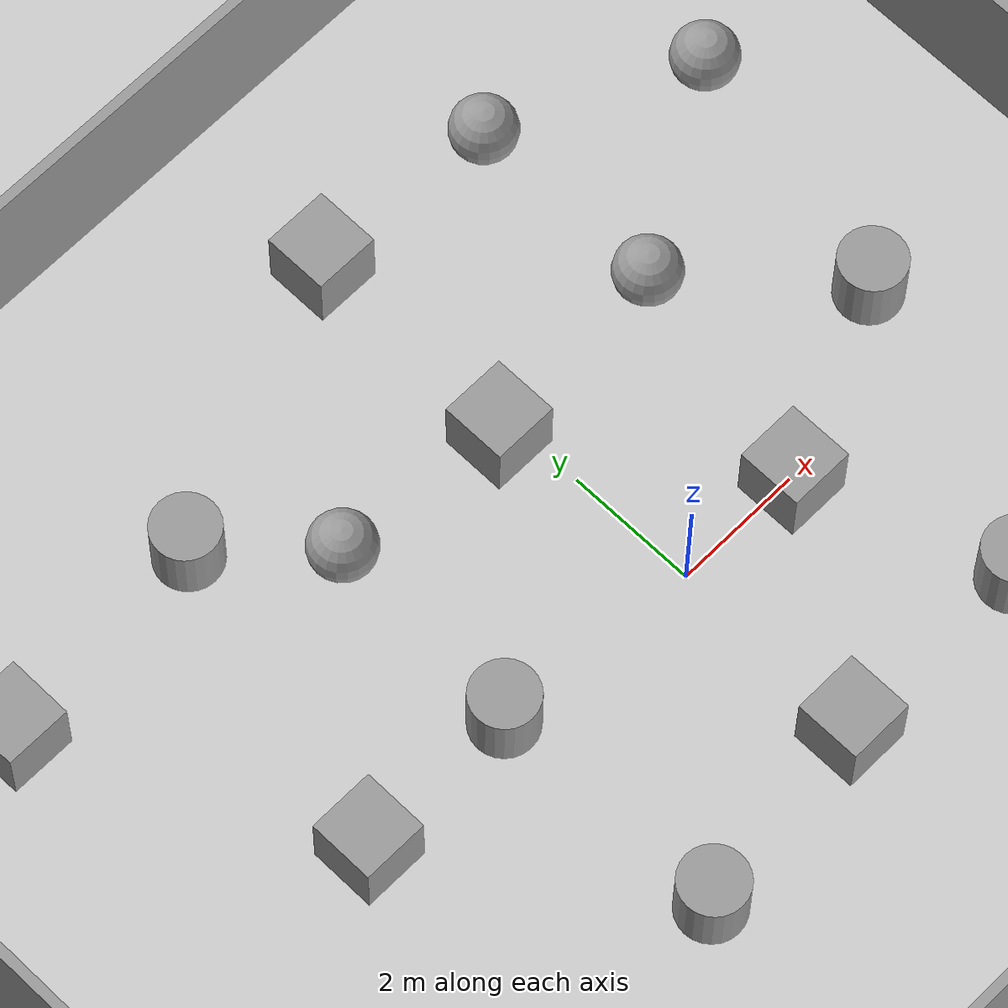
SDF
<sdf version="1.7">
 <world name="default">
  <light name="sun" type="directional">
   <pose>0 0 10 0 -0 0</pose>
   <diffuse>0.8 0.8 0.8 1</diffuse>
   <specular>0.2 0.2 0.2 1</specular>
   <attenuation>
    <range>1000</range>
    <constant>0.9</constant>
    <linear>0.01</linear>
    <quadratic>0.001</quadratic>
   </attenuation>
   <direction>-0.5 0.1 -0.9</direction>
   <spot><inner_angle>0</inner_angle><outer_angle>0</outer_angle><falloff>0</falloff></spot>
  </light>
  <model name="ground_plane">
   <static>1</static>
   <link name="link">
    <collision name="collision">
     <geometry><plane><normal>0 0 1</normal><size>100 100</size></plane></geometry>
     <surface><friction><ode><mu>100</mu><mu2>50</mu2></ode></friction></surface>
    </collision>
    <visual name="visual">
     <cast_shadows>0</cast_shadows>
     <geometry><plane><normal>0 0 1</normal><size>100 100</size></plane></geometry>
     <material>
      <script><uri>file://media/materials/scripts/gazebo.material</uri><name>Gazebo/Grey</name></script>
     </material>
    </visual>
   </link>
  </model>
  <gravity>0 0 -9.8</gravity>
  <magnetic_field>6e-06 2.3e-05 -4.2e-05</magnetic_field>
  <atmosphere type="adiabatic"/>
  <physics type="ode">
   <max_step_size>0.001</max_step_size>
   <real_time_factor>1</real_time_factor>
   <real_time_update_rate>1000</real_time_update_rate>
  </physics>
  <scene><ambient>0.4 0.4 0.4 1</ambient><background>0.7 0.7 0.7 1</background><shadows>1</shadows></scene>
  <spherical_coordinates>
   <surface_model>EARTH_WGS84</surface_model>
   <latitude_deg>0</latitude_deg>
   <longitude_deg>0</longitude_deg>
   <elevation>0</elevation>
   <heading_deg>0</heading_deg>
  </spherical_coordinates>
  <model name="unit_box">
   <pose>1.93964 -0.08049 0.499995 -1e-05 -0 -0</pose>
   <link name="link">
    <inertial>
     <mass>1</mass>
     <inertia>
      <ixx>0.166667</ixx>
      <ixy>0</ixy>
      <ixz>0</ixz>
      <iyy>0.166667</iyy>
      <iyz>0</iyz>
      <izz>0.166667</izz>
     </inertia>
    </inertial>
    <collision name="collision"><geometry><box><size>1 1 1</size></box></geometry></collision>
    <visual name="visual">
     <geometry><box><size>1 1 1</size></box></geometry>
     <material>
      <script><name>Gazebo/Grey</name><uri>file://media/materials/scripts/gazebo.material</uri></script>
     </material>
    </visual>
   </link>
  </model>
  <model name="unit_box_0">
   <pose>-0.138919 -3.06362 0.499995 0 1e-05 0</pose>
   <link name="link">
    <inertial>
     <mass>1</mass>
     <inertia>
      <ixx>0.166667</ixx>
      <ixy>0</ixy>
      <ixz>0</ixz>
      <iyy>0.166667</iyy>
      <iyz>0</iyz>
      <izz>0.166667</izz>
     </inertia>
    </inertial>
    <collision name="collision"><geometry><box><size>1 1 1</size></box></geometry></collision>
    <visual name="visual">
     <geometry><box><size>1 1 1</size></box></geometry>
     <material>
      <script><name>Gazebo/Grey</name><uri>file://media/materials/scripts/gazebo.material</uri></script>
     </material>
    </visual>
   </link>
  </model>
  <model name="unit_box_1">
   <pose>-0.318325 3.14913 0.499995 -1e-05 -0 -0</pose>
   <link name="link">
    <inertial>
     <mass>1</mass>
     <inertia>
      <ixx>0.166667</ixx>
      <ixy>0</ixy>
      <ixz>0</ixz>
      <iyy>0.166667</iyy>
      <iyz>0</iyz>
      <izz>0.166667</izz>
     </inertia>
    </inertial>
    <collision name="collision"><geometry><box><size>1 1 1</size></box></geometry></collision>
    <visual name="visual">
     <geometry><box><size>1 1 1</size></box></geometry>
     <material>
      <script><name>Gazebo/Grey</name><uri>file://media/materials/scripts/gazebo.material</uri></script>
     </material>
    </visual>
   </link>
  </model>
  <model name="unit_cylinder">
   <pose>-3.16913 0.251512 0.499993 -3e-06 3e-06 0</pose>
   <link name="link">
    <inertial>
     <mass>1</mass>
     <inertia><ixx>0.145833</ixx><ixy>0</ixy><ixz>0</ixz><iyy>0.145833</iyy><iyz>0</iyz><izz>0.125</izz></inertia>
    </inertial>
    <collision name="collision">
     <geometry><cylinder><radius>0.5</radius><length>1</length></cylinder></geometry>
    </collision>
    <visual name="visual">
     <geometry><cylinder><radius>0.5</radius><length>1</length></cylinder></geometry>
     <material>
      <script><name>Gazebo/Grey</name><uri>file://media/materials/scripts/gazebo.material</uri></script>
     </material>
    </visual>
   </link>
  </model>
  <model name="unit_sphere">
   <pose>2.74146 3.34619 0.5 0 -0 0</pose>
   <link name="link">
    <inertial>
     <mass>1</mass>
     <inertia><ixx>0.1</ixx><ixy>0</ixy><ixz>0</ixz><iyy>0.1</iyy><iyz>0</iyz><izz>0.1</izz></inertia>
    </inertial>
    <collision name="collision"><geometry><sphere><radius>0.5</radius></sphere></geometry></collision>
    <visual name="visual">
     <geometry><sphere><radius>0.5</radius></sphere></geometry>
     <material>
      <script><name>Gazebo/Grey</name><uri>file://media/materials/scripts/gazebo.material</uri></script>
     </material>
    </visual>
   </link>
  </model>
  <model name="unit_cylinder_0">
   <pose>2.99686 -3.07641 0.499992 -3e-06 3e-06 0</pose>
   <link name="link">
    <inertial>
     <mass>1</mass>
     <inertia><ixx>0.145833</ixx><ixy>0</ixy><ixz>0</ixz><iyy>0.145833</iyy><iyz>0</iyz><izz>0.125</izz></inertia>
    </inertial>
    <collision name="collision">
     <geometry><cylinder><radius>0.5</radius><length>1</length></cylinder></geometry>
    </collision>
    <visual name="visual">
     <geometry><cylinder><radius>0.5</radius><length>1</length></cylinder></geometry>
     <material>
      <script><name>Gazebo/Grey</name><uri>file://media/materials/scripts/gazebo.material</uri></script>
     </material>
    </visual>
   </link>
  </model>
  <model name="unit_box_2">
   <pose>-0.20463 6.60844 0.499995 -1e-05 -0 -0</pose>
   <link name="link">
    <inertial>
     <mass>1</mass>
     <inertia>
      <ixx>0.166667</ixx>
      <ixy>0</ixy>
      <ixz>0</ixz>
      <iyy>0.166667</iyy>
      <iyz>0</iyz>
      <izz>0.166667</izz>
     </inertia>
    </inertial>
    <collision name="collision"><geometry><box><size>1 1 1</size></box></geometry></collision>
    <visual name="visual">
     <geometry><box><size>1 1 1</size></box></geometry>
     <material>
      <script><name>Gazebo/Grey</name><uri>file://media/materials/scripts/gazebo.material</uri></script>
     </material>
    </visual>
   </link>
  </model>
  <model name="unit_cylinder_1">
   <pose>4.79075 1.15452 0.499998 3e-06 -3e-06 0</pose>
   <link name="link">
    <inertial>
     <mass>1</mass>
     <inertia><ixx>0.145833</ixx><ixy>0</ixy><ixz>0</ixz><iyy>0.145833</iyy><iyz>0</iyz><izz>0.125</izz></inertia>
    </inertial>
    <collision name="collision">
     <geometry><cylinder><radius>0.5</radius><length>1</length></cylinder></geometry>
    </collision>
    <visual name="visual">
     <geometry><cylinder><radius>0.5</radius><length>1</length></cylinder></geometry>
     <material>
      <script><name>Gazebo/Grey</name><uri>file://media/materials/scripts/gazebo.material</uri></script>
     </material>
    </visual>
   </link>
  </model>
  <model name="unit_sphere_0">
   <pose>2.73147 6.4383 0.5 0 -0 0</pose>
   <link name="link">
    <inertial>
     <mass>1</mass>
     <inertia><ixx>0.1</ixx><ixy>0</ixy><ixz>0</ixz><iyy>0.1</iyy><iyz>0</iyz><izz>0.1</izz></inertia>
    </inertial>
    <collision name="collision"><geometry><sphere><radius>0.5</radius></sphere></geometry></collision>
    <visual name="visual">
     <geometry><sphere><radius>0.5</radius></sphere></geometry>
     <material>
      <script><name>Gazebo/Grey</name><uri>file://media/materials/scripts/gazebo.material</uri></script>
     </material>
    </visual>
   </link>
  </model>
  <model name="unit_cylinder_2">
   <pose>6.33812 -2.40268 0.499998 3e-06 -4e-06 0</pose>
   <link name="link">
    <inertial>
     <mass>1</mass>
     <inertia><ixx>0.145833</ixx><ixy>0</ixy><ixz>0</ixz><iyy>0.145833</iyy><iyz>0</iyz><izz>0.125</izz></inertia>
    </inertial>
    <collision name="collision">
     <geometry><cylinder><radius>0.5</radius><length>1</length></cylinder></geometry>
    </collision>
    <visual name="visual">
     <geometry><cylinder><radius>0.5</radius><length>1</length></cylinder></geometry>
     <material>
      <script><name>Gazebo/Grey</name><uri>file://media/materials/scripts/gazebo.material</uri></script>
     </material>
    </visual>
   </link>
  </model>
  <model name="unit_box_3">
   <pose>1.65578 -5.64349 0.499995 -1e-05 -0 -0</pose>
   <link name="link">
    <inertial>
     <mass>1</mass>
     <inertia>
      <ixx>0.166667</ixx>
      <ixy>0</ixy>
      <ixz>0</ixz>
      <iyy>0.166667</iyy>
      <iyz>0</iyz>
      <izz>0.166667</izz>
     </inertia>
    </inertial>
    <collision name="collision"><geometry><box><size>1 1 1</size></box></geometry></collision>
    <visual name="visual">
     <geometry><box><size>1 1 1</size></box></geometry>
     <material>
      <script><name>Gazebo/Grey</name><uri>file://media/materials/scripts/gazebo.material</uri></script>
     </material>
    </visual>
   </link>
  </model>
  <model name="unit_cylinder_3">
   <pose>-3.12794 -3.42714 0.499992 -3e-06 4e-06 0</pose>
   <link name="link">
    <inertial>
     <mass>1</mass>
     <inertia><ixx>0.145833</ixx><ixy>0</ixy><ixz>0</ixz><iyy>0.145833</iyy><iyz>0</iyz><izz>0.125</izz></inertia>
    </inertial>
    <collision name="collision">
     <geometry><cylinder><radius>0.5</radius><length>1</length></cylinder></geometry>
    </collision>
    <visual name="visual">
     <geometry><cylinder><radius>0.5</radius><length>1</length></cylinder></geometry>
     <material>
      <script><name>Gazebo/Grey</name><uri>file://media/materials/scripts/gazebo.material</uri></script>
     </material>
    </visual>
   </link>
  </model>
  <model name="unit_sphere_1">
   <pose>-3.01074 3.38695 0.5 0 -0 0</pose>
   <link name="link">
    <inertial>
     <mass>1</mass>
     <inertia><ixx>0.1</ixx><ixy>0</ixy><ixz>0</ixz><iyy>0.1</iyy><iyz>0</iyz><izz>0.1</izz></inertia>
    </inertial>
    <collision name="collision"><geometry><sphere><radius>0.5</radius></sphere></geometry></collision>
    <visual name="visual">
     <geometry><sphere><radius>0.5</radius></sphere></geometry>
     <material>
      <script><name>Gazebo/Grey</name><uri>file://media/materials/scripts/gazebo.material</uri></script>
     </material>
    </visual>
   </link>
  </model>
  <model name="unit_box_4">
   <pose>-5.68748 0.212939 0.499995 0 1e-05 0</pose>
   <link name="link">
    <inertial>
     <mass>1</mass>
     <inertia>
      <ixx>0.166667</ixx>
      <ixy>0</ixy>
      <ixz>0</ixz>
      <iyy>0.166667</iyy>
      <iyz>0</iyz>
      <izz>0.166667</izz>
     </inertia>
    </inertial>
    <collision name="collision"><geometry><box><size>1 1 1</size></box></geometry></collision>
    <visual name="visual">
     <geometry><box><size>1 1 1</size></box></geometry>
     <material>
      <script><name>Gazebo/Grey</name><uri>file://media/materials/scripts/gazebo.material</uri></script>
     </material>
    </visual>
   </link>
  </model>
  <model name="unit_cylinder_4">
   <pose>-4.41205 4.87625 0.499992 -3e-06 -4e-06 -0</pose>
   <link name="link">
    <inertial>
     <mass>1</mass>
     <inertia><ixx>0.145833</ixx><ixy>0</ixy><ixz>0</ixz><iyy>0.145833</iyy><iyz>0</iyz><izz>0.125</izz></inertia>
    </inertial>
    <collision name="collision">
     <geometry><cylinder><radius>0.5</radius><length>1</length></cylinder></geometry>
    </collision>
    <visual name="visual">
     <geometry><cylinder><radius>0.5</radius><length>1</length></cylinder></geometry>
     <material>
      <script><name>Gazebo/Grey</name><uri>file://media/materials/scripts/gazebo.material</uri></script>
     </material>
    </visual>
   </link>
  </model>
  <model name="Untitled">
   <pose>-6424.46 -1802.84 0 0 -0 0</pose>
   <link name="Wall_0">
    <collision name="Wall_0_Collision">
     <geometry><box><size>2656.25 0.15 2.5</size></box></geometry>
     <pose>0 0 1.25 0 -0 0</pose>
    </collision>
    <visual name="Wall_0_Visual">
     <pose>0 0 1.25 0 -0 0</pose>
     <geometry><box><size>2656.25 0.15 2.5</size></box></geometry>
     <material>
      <script><uri>file://media/materials/scripts/gazebo.material</uri><name>Gazebo/Grey</name></script>
      <ambient>1 1 1 1</ambient>
     </material>
     <meta><layer>0</layer></meta>
    </visual>
    <pose>-4436.67 -1825.49 0 0 -0 1.309</pose>
   </link>
   <link name="Wall_1">
    <collision name="Wall_1_Collision">
     <geometry><box><size>3297.25 0.15 2.5</size></box></geometry>
     <pose>0 0 1.25 0 -0 0</pose>
    </collision>
    <visual name="Wall_1_Visual">
     <pose>0 0 1.25 0 -0 0</pose>
     <geometry><box><size>3297.25 0.15 2.5</size></box></geometry>
     <material>
      <script><uri>file://media/materials/scripts/gazebo.material</uri><name>Gazebo/Grey</name></script>
      <ambient>1 1 1 1</ambient>
     </material>
     <meta><layer>0</layer></meta>
    </visual>
    <pose>-5258.65 623.006 0 0 -0 2.35619</pose>
   </link>
   <link name="Wall_2">
    <collision name="Wall_2_Collision">
     <geometry><box><size>6061.5 0.15 2.5</size></box></geometry>
     <pose>0 0 1.25 0 -0 0</pose>
    </collision>
    <visual name="Wall_2_Visual">
     <pose>0 0 1.25 0 -0 0</pose>
     <geometry><box><size>6061.5 0.15 2.5</size></box></geometry>
     <material>
      <script><uri>file://media/materials/scripts/gazebo.material</uri><name>Gazebo/Grey</name></script>
      <ambient>1 1 1 1</ambient>
     </material>
     <meta><layer>0</layer></meta>
    </visual>
    <pose>-3496.94 2573.1 0 0 -0 0.261799</pose>
   </link>
   <link name="Wall_4">
    <collision name="Wall_4_Collision">
     <geometry><box><size>8350 0.15 2.5</size></box></geometry>
     <pose>0 0 1.25 0 -0 0</pose>
    </collision>
    <visual name="Wall_4_Visual">
     <pose>0 0 1.25 0 -0 0</pose>
     <geometry><box><size>8350 0.15 2.5</size></box></geometry>
     <material>
      <script><uri>file://media/materials/scripts/gazebo.material</uri><name>Gazebo/Grey</name></script>
      <ambient>1 1 1 1</ambient>
     </material>
     <meta><layer>0</layer></meta>
    </visual>
    <pose>-3447.72 0.008179 0 0 -0 -1.5708</pose>
   </link>
   <link name="Wall_5">
    <collision name="Wall_5_Collision">
     <geometry><box><size>4695.75 0.15 2.5</size></box></geometry>
     <pose>0 0 1.25 0 -0 0</pose>
    </collision>
    <visual name="Wall_5_Visual">
     <pose>0 0 1.25 0 -0 0</pose>
     <geometry><box><size>4695.75 0.15 2.5</size></box></geometry>
     <material>
      <script><uri>file://media/materials/scripts/gazebo.material</uri><name>Gazebo/Grey</name></script>
      <ambient>1 1 1 1</ambient>
     </material>
     <meta><layer>0</layer></meta>
    </visual>
    <pose>-4055.38 -1907.12 0 0 -0 1.8326</pose>
   </link>
   <link name="Wall_6">
    <collision name="Wall_6_Collision">
     <geometry><box><size>212.75 0.15 2.5</size></box></geometry>
     <pose>0 0 1.25 0 -0 0</pose>
    </collision>
    <visual name="Wall_6_Visual">
     <pose>0 0 1.25 0 -0 0</pose>
     <geometry><box><size>212.75 0.15 2.5</size></box></geometry>
     <material>
      <script><uri>file://media/materials/scripts/gazebo.material</uri><name>Gazebo/Grey</name></script>
      <ambient>1 1 1 1</ambient>
     </material>
     <meta><layer>0</layer></meta>
    </visual>
    <pose>-4609.88 452.743 0 0 -0 1.0472</pose>
   </link>
   <link name="Window_0">
    <collision name="Window_0_Collision">
     <geometry><box><size>0.8 0.17 0.8</size></box></geometry>
     <pose>0 0 0.4 0 -0 0</pose>
    </collision>
    <visual name="Window_0_Visual">
     <pose>0 0 0.4 0 -0 0</pose>
     <geometry><box><size>0.8 0.17 0.8</size></box></geometry>
     <material>
      <script><uri>file://media/materials/scripts/gazebo.material</uri><name>Gazebo/Grey</name></script>
     </material>
    </visual>
    <pose>-3633.68 -1961.57 0.5 0 -0 0</pose>
   </link>
   <static>1</static>
  </model>
  <model name="test_room">
   <pose>-1.10733 1.10615 0 0 -0 0</pose>
   <link name="Wall_13">
    <collision name="Wall_13_Collision">
     <geometry><box><size>18.75 0.15 2.5</size></box></geometry>
     <pose>0 0 1.25 0 -0 0</pose>
    </collision>
    <visual name="Wall_13_Visual">
     <pose>0 0 1.25 0 -0 0</pose>
     <geometry><box><size>18.75 0.15 2.5</size></box></geometry>
     <material>
      <script><uri>file://media/materials/scripts/gazebo.material</uri><name>Gazebo/Grey</name></script>
      <ambient>1 1 1 1</ambient>
     </material>
     <meta><layer>0</layer></meta>
    </visual>
    <pose>0 -8.3 0 0 -0 0</pose>
   </link>
   <link name="Wall_14">
    <collision name="Wall_14_Collision">
     <geometry><box><size>16.75 0.15 2.5</size></box></geometry>
     <pose>0 0 1.25 0 -0 0</pose>
    </collision>
    <visual name="Wall_14_Visual">
     <pose>0 0 1.25 0 -0 0</pose>
     <geometry><box><size>16.75 0.15 2.5</size></box></geometry>
     <material>
      <script><uri>file://media/materials/scripts/gazebo.material</uri><name>Gazebo/Grey</name></script>
      <ambient>1 1 1 1</ambient>
     </material>
     <meta><layer>0</layer></meta>
    </visual>
    <pose>9.3 0 0 0 -0 1.5708</pose>
   </link>
   <link name="Wall_15">
    <collision name="Wall_15_Collision">
     <geometry><box><size>18.75 0.15 2.5</size></box></geometry>
     <pose>0 0 1.25 0 -0 0</pose>
    </collision>
    <visual name="Wall_15_Visual">
     <pose>0 0 1.25 0 -0 0</pose>
     <geometry><box><size>18.75 0.15 2.5</size></box></geometry>
     <material>
      <script><uri>file://media/materials/scripts/gazebo.material</uri><name>Gazebo/Grey</name></script>
      <ambient>1 1 1 1</ambient>
     </material>
     <meta><layer>0</layer></meta>
    </visual>
    <pose>0 8.3 0 0 -0 3.14159</pose>
   </link>
   <link name="Wall_16">
    <collision name="Wall_16_Collision">
     <geometry><box><size>16.75 0.15 2.5</size></box></geometry>
     <pose>0 0 1.25 0 -0 0</pose>
    </collision>
    <visual name="Wall_16_Visual">
     <pose>0 0 1.25 0 -0 0</pose>
     <geometry><box><size>16.75 0.15 2.5</size></box></geometry>
     <material>
      <script><uri>file://media/materials/scripts/gazebo.material</uri><name>Gazebo/Grey</name></script>
      <ambient>1 1 1 1</ambient>
     </material>
     <meta><layer>0</layer></meta>
    </visual>
    <pose>-9.3 0 0 0 -0 -1.5708</pose>
   </link>
   <static>1</static>
  </model>
  <model name="unit_box_5">
   <pose>-7.80342 4.57877 0.499995 0 1e-05 0</pose>
   <link name="link">
    <inertial>
     <mass>1</mass>
     <inertia>
      <ixx>0.166667</ixx>
      <ixy>0</ixy>
      <ixz>0</ixz>
      <iyy>0.166667</iyy>
      <iyz>0</iyz>
      <izz>0.166667</izz>
     </inertia>
    </inertial>
    <collision name="collision"><geometry><box><size>1 1 1</size></box></geometry></collision>
    <visual name="visual">
     <geometry><box><size>1 1 1</size></box></geometry>
     <material>
      <script><name>Gazebo/Grey</name><uri>file://media/materials/scripts/gazebo.material</uri></script>
     </material>
    </visual>
   </link>
  </model>
  <model name="unit_cylinder_5">
   <pose>-7.78857 -2.29921 0.499997 3e-06 4e-06 -0</pose>
   <link name="link">
    <inertial>
     <mass>1</mass>
     <inertia><ixx>0.145833</ixx><ixy>0</ixy><ixz>0</ixz><iyy>0.145833</iyy><iyz>0</iyz><izz>0.125</izz></inertia>
    </inertial>
    <collision name="collision">
     <geometry><cylinder><radius>0.5</radius><length>1</length></cylinder></geometry>
    </collision>
    <visual name="visual">
     <geometry><cylinder><radius>0.5</radius><length>1</length></cylinder></geometry>
     <material>
      <script><name>Gazebo/Grey</name><uri>file://media/materials/scripts/gazebo.material</uri></script>
     </material>
    </visual>
   </link>
  </model>
  <model name="unit_sphere_2">
   <pose>5.68351 5.08059 0.5 0 -0 0</pose>
   <link name="link">
    <inertial>
     <mass>1</mass>
     <inertia><ixx>0.1</ixx><ixy>0</ixy><ixz>0</ixz><iyy>0.1</iyy><iyz>0</iyz><izz>0.1</izz></inertia>
    </inertial>
    <collision name="collision"><geometry><sphere><radius>0.5</radius></sphere></geometry></collision>
    <visual name="visual">
     <geometry><sphere><radius>0.5</radius></sphere></geometry>
     <material>
      <script><name>Gazebo/Grey</name><uri>file://media/materials/scripts/gazebo.material</uri></script>
     </material>
    </visual>
   </link>
  </model>
 </world>
</sdf>
